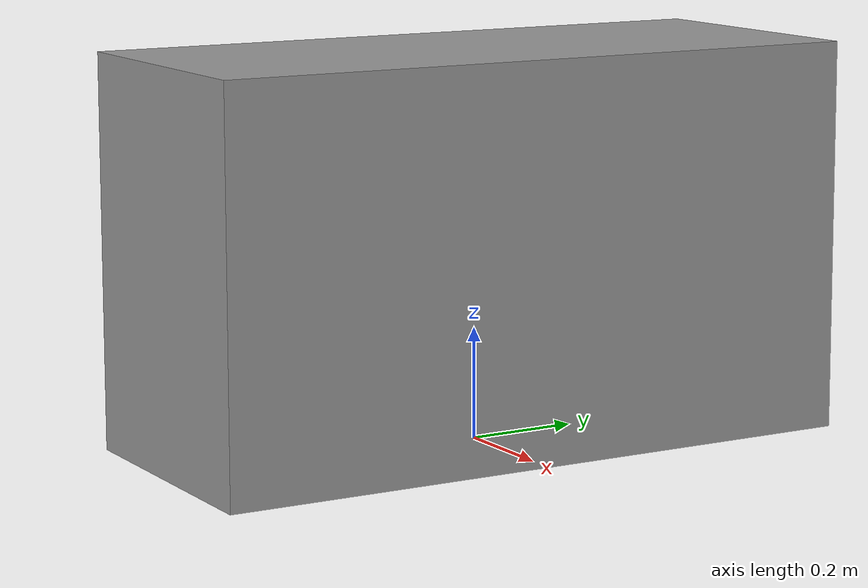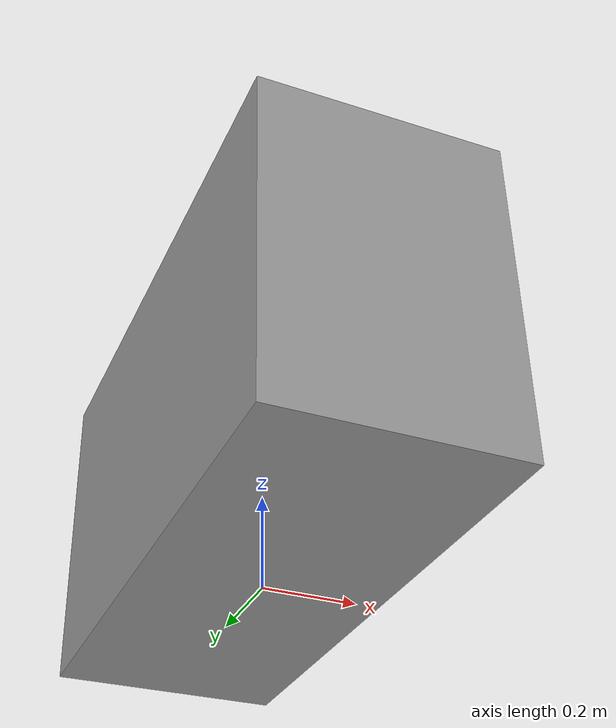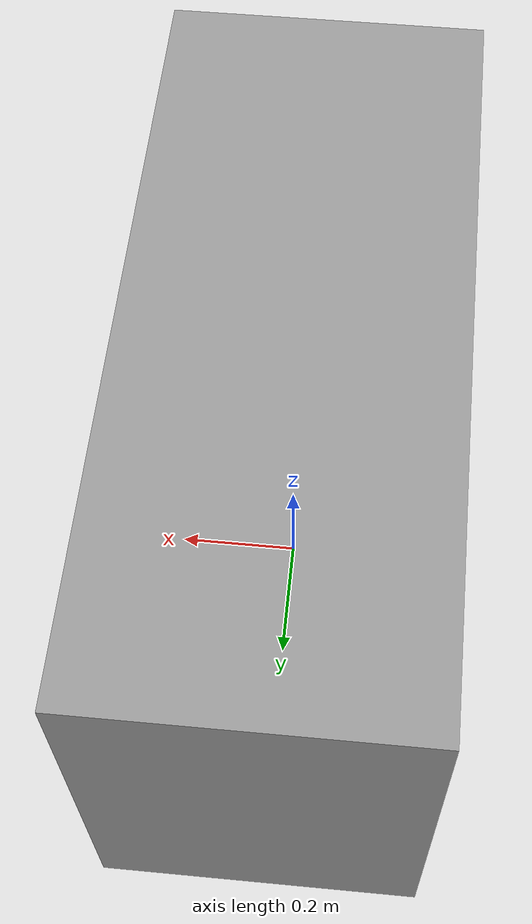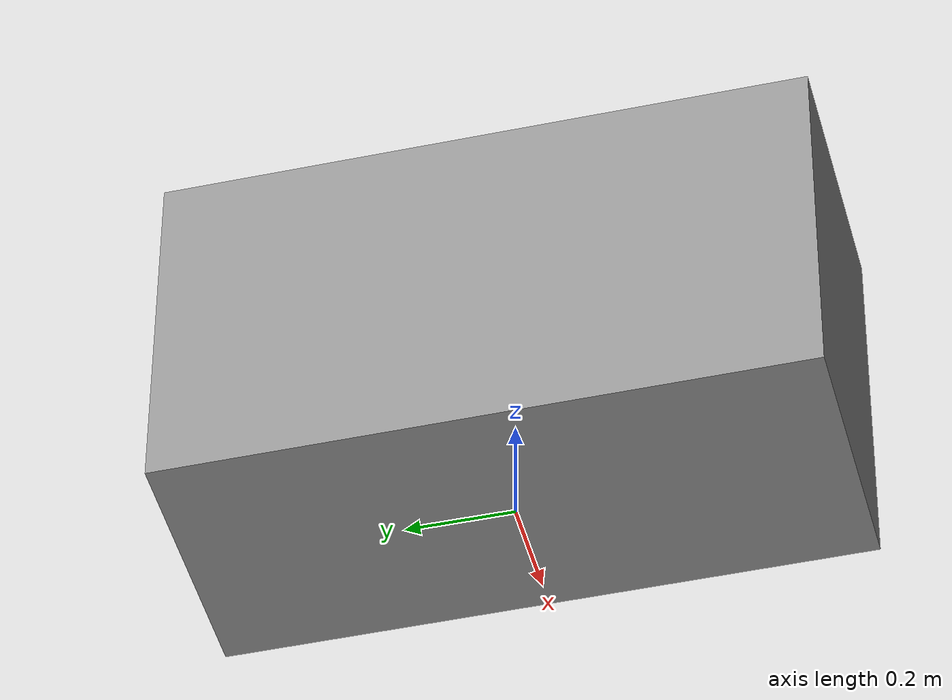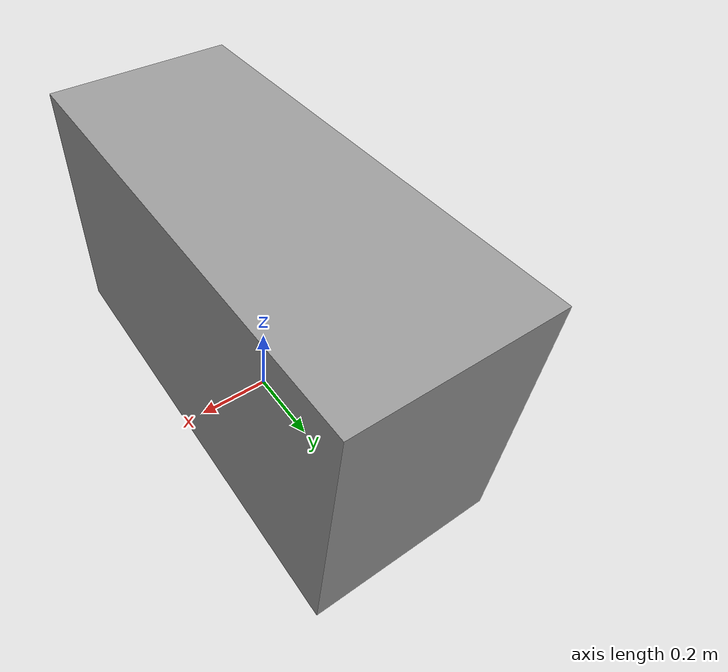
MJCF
<mujoco model="table">

    <compiler angle="radian" autolimits="true"/>

    <default>
        <default class="table">
            <geom
                type="box"
                rgba="0.6 0.6 0.6 1"
                contype="1"
                conaffinity="1"/>
        </default>
    </default>

    <worldbody>

        <body name="table" pos="0 0 0.35">

            <joint name="free" type="free"/>

            <inertial
                pos="0 0 0"
                mass="100.0"
                diaginertia="16.0833 6.1667 14.0833"/>

            <geom
                name="table_collision"
                class="table"
                size="0.25 0.6 0.35"/>

        </body>

    </worldbody>

</mujoco>
